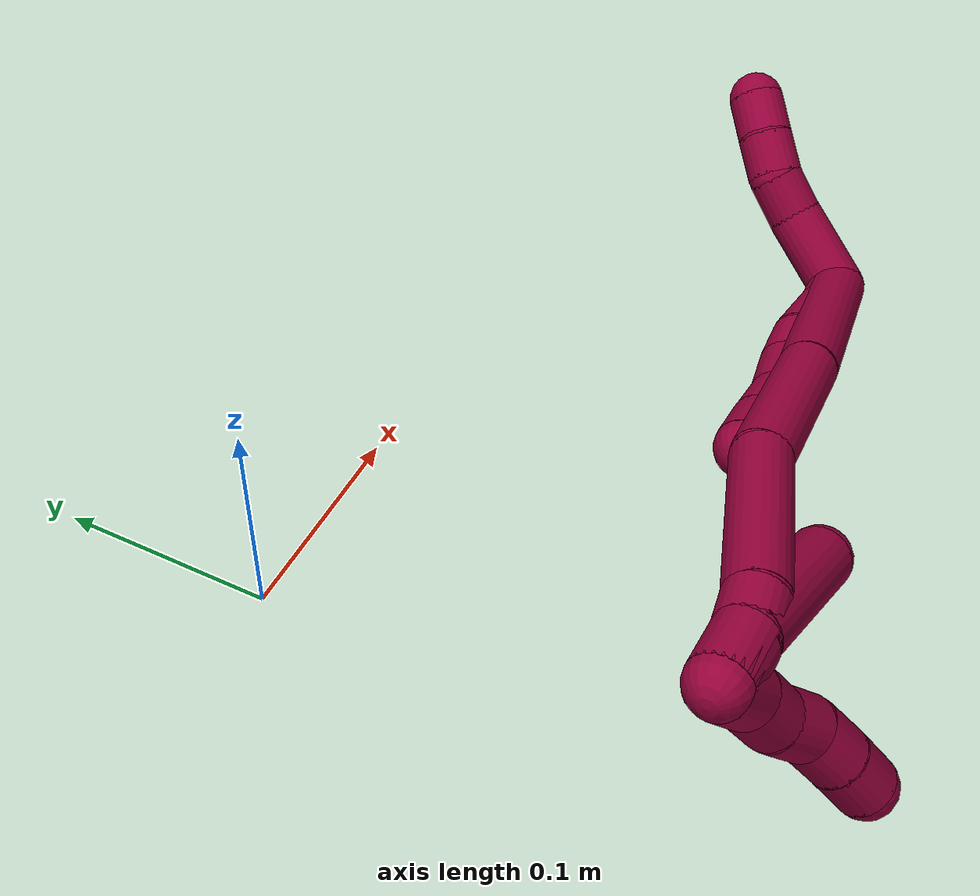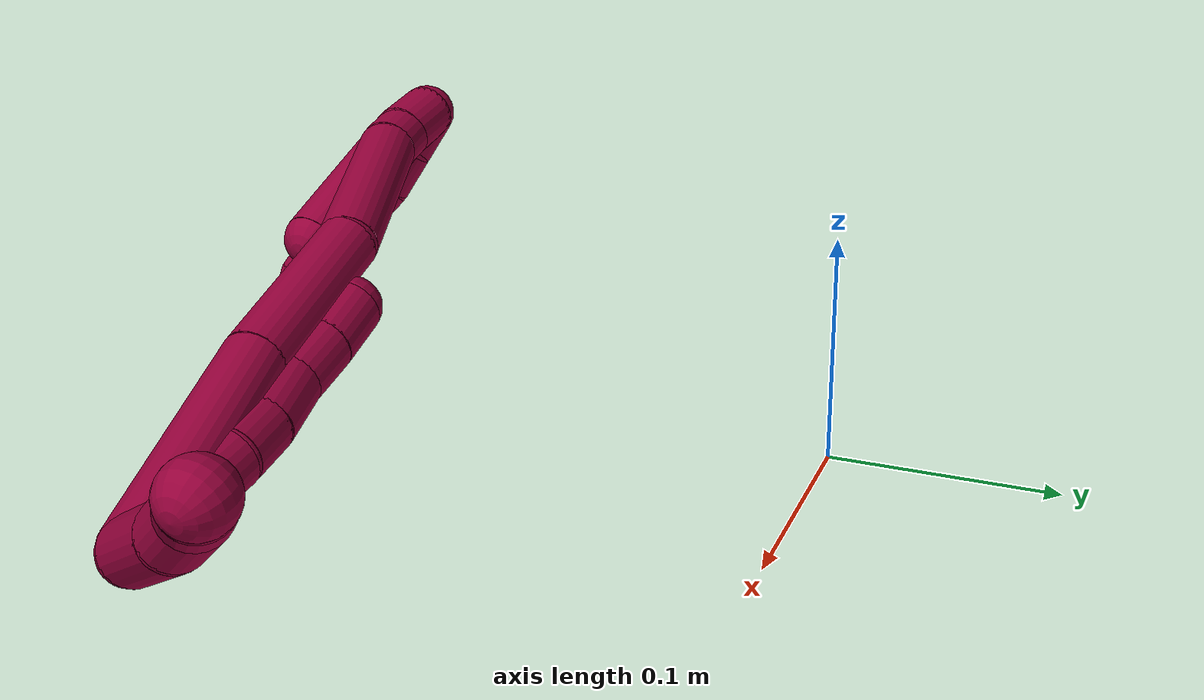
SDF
<sdf version="1.7">
 <world name="default">
  <model name="8">
   <static>0</static>
   <link name="8">
    <collision name="collision-cylinder-e_1_2_8">
     <pose>-0.000372 -0.000363 -0.010866 3.10817 -0.034182 -1.59312</pose>
     <geometry><cylinder><radius>0.0125</radius><length>0.021757</length></cylinder></geometry>
     <surface>
      <friction><ode><mu>1.16</mu><mu2>1.16</mu2><slip1>0</slip1><slip2>0</slip2></ode></friction>
      <contact><ode><kp>1e+06</kp><kd>1</kd><max_vel>0</max_vel><min_depth>0.001</min_depth></ode></contact>
     </surface>
    </collision>
    <visual name="visual-cylinder-e_1_2_8">
     <pose>-0.000372 -0.000363 -0.010866 3.10817 -0.034182 -1.59312</pose>
     <geometry><cylinder><radius>0.0125</radius><length>0.021757</length></cylinder></geometry>
     <material><ambient>0.584314 0 0.227451 1</ambient></material>
    </visual>
    <collision name="collision-cylinder-e_2_8_9">
     <pose>-0.00029 0.000176 -0.037294 -3.08365 0.029113 -0.930977</pose>
     <geometry><cylinder><radius>0.0125</radius><length>0.031189</length></cylinder></geometry>
     <surface>
      <friction><ode><mu>1.16</mu><mu2>1.16</mu2><slip1>0</slip1><slip2>0</slip2></ode></friction>
      <contact><ode><kp>1e+06</kp><kd>1</kd><max_vel>0</max_vel><min_depth>0.001</min_depth></ode></contact>
     </surface>
    </collision>
    <visual name="visual-cylinder-e_2_8_9">
     <pose>-0.00029 0.000176 -0.037294 -3.08365 0.029113 -0.930977</pose>
     <geometry><cylinder><radius>0.0125</radius><length>0.031189</length></cylinder></geometry>
     <material><ambient>0.584314 0 0.227451 1</ambient></material>
    </visual>
    <collision name="collision-cylinder-e_3_9_10">
     <pose>0.000195 -0.000116 -0.06377 3.03254 0.0028 0.051282</pose>
     <geometry><cylinder><radius>0.0125</radius><length>0.021959</length></cylinder></geometry>
     <surface>
      <friction><ode><mu>1.16</mu><mu2>1.16</mu2><slip1>0</slip1><slip2>0</slip2></ode></friction>
      <contact><ode><kp>1e+06</kp><kd>1</kd><max_vel>0</max_vel><min_depth>0.001</min_depth></ode></contact>
     </surface>
    </collision>
    <visual name="visual-cylinder-e_3_9_10">
     <pose>0.000195 -0.000116 -0.06377 3.03254 0.0028 0.051282</pose>
     <geometry><cylinder><radius>0.0125</radius><length>0.021959</length></cylinder></geometry>
     <material><ambient>0.584314 0 0.227451 1</ambient></material>
    </visual>
    <collision name="collision-cylinder-e_4_10_11">
     <pose>-0.001576 -0.002849 -0.088006 3.02665 -0.133594 -1.72103</pose>
     <geometry><cylinder><radius>0.0125</radius><length>0.027061</length></cylinder></geometry>
     <surface>
      <friction><ode><mu>1.16</mu><mu2>1.16</mu2><slip1>0</slip1><slip2>0</slip2></ode></friction>
      <contact><ode><kp>1e+06</kp><kd>1</kd><max_vel>0</max_vel><min_depth>0.001</min_depth></ode></contact>
     </surface>
    </collision>
    <visual name="visual-cylinder-e_4_10_11">
     <pose>-0.001576 -0.002849 -0.088006 3.02665 -0.133594 -1.72103</pose>
     <geometry><cylinder><radius>0.0125</radius><length>0.027061</length></cylinder></geometry>
     <material><ambient>0.584314 0 0.227451 1</ambient></material>
    </visual>
    <collision name="collision-cylinder-e_5_11_12">
     <pose>-0.004167 -0.003858 -0.113077 -3.09659 -0.066915 1.95765</pose>
     <geometry><cylinder><radius>0.0125</radius><length>0.023577</length></cylinder></geometry>
     <surface>
      <friction><ode><mu>1.16</mu><mu2>1.16</mu2><slip1>0</slip1><slip2>0</slip2></ode></friction>
      <contact><ode><kp>1e+06</kp><kd>1</kd><max_vel>0</max_vel><min_depth>0.001</min_depth></ode></contact>
     </surface>
    </collision>
    <visual name="visual-cylinder-e_5_11_12">
     <pose>-0.004167 -0.003858 -0.113077 -3.09659 -0.066915 1.95765</pose>
     <geometry><cylinder><radius>0.0125</radius><length>0.023577</length></cylinder></geometry>
     <material><ambient>0.584314 0 0.227451 1</ambient></material>
    </visual>
    <collision name="collision-cylinder-e_6_12_6">
     <pose>-0.006436 -0.002877 -0.136958 -3.10442 -0.121364 2.54778</pose>
     <geometry><cylinder><radius>0.0125</radius><length>0.024457</length></cylinder></geometry>
     <surface>
      <friction><ode><mu>1.16</mu><mu2>1.16</mu2><slip1>0</slip1><slip2>0</slip2></ode></friction>
      <contact><ode><kp>1e+06</kp><kd>1</kd><max_vel>0</max_vel><min_depth>0.001</min_depth></ode></contact>
     </surface>
    </collision>
    <visual name="visual-cylinder-e_6_12_6">
     <pose>-0.006436 -0.002877 -0.136958 -3.10442 -0.121364 2.54778</pose>
     <geometry><cylinder><radius>0.0125</radius><length>0.024457</length></cylinder></geometry>
     <material><ambient>0.584314 0 0.227451 1</ambient></material>
    </visual>
    <collision name="collision-cylinder-e_1_2_13">
     <pose>-0.000548 0.018665 0.006023 -1.25865 -0.027948 0.020349</pose>
     <geometry><cylinder><radius>0.0125</radius><length>0.039241</length></cylinder></geometry>
     <surface>
      <friction><ode><mu>1.16</mu><mu2>1.16</mu2><slip1>0</slip1><slip2>0</slip2></ode></friction>
      <contact><ode><kp>1e+06</kp><kd>1</kd><max_vel>0</max_vel><min_depth>0.001</min_depth></ode></contact>
     </surface>
    </collision>
    <visual name="visual-cylinder-e_1_2_13">
     <pose>-0.000548 0.018665 0.006023 -1.25865 -0.027948 0.020349</pose>
     <geometry><cylinder><radius>0.0125</radius><length>0.039241</length></cylinder></geometry>
     <material><ambient>0.584314 0 0.227451 1</ambient></material>
    </visual>
    <collision name="collision-cylinder-e_2_13_14">
     <pose>-0.003019 0.047315 0.013868 -1.39029 -0.187169 0.156242</pose>
     <geometry><cylinder><radius>0.0125</radius><length>0.020661</length></cylinder></geometry>
     <surface>
      <friction><ode><mu>1.16</mu><mu2>1.16</mu2><slip1>0</slip1><slip2>0</slip2></ode></friction>
      <contact><ode><kp>1e+06</kp><kd>1</kd><max_vel>0</max_vel><min_depth>0.001</min_depth></ode></contact>
     </surface>
    </collision>
    <visual name="visual-cylinder-e_2_13_14">
     <pose>-0.003019 0.047315 0.013868 -1.39029 -0.187169 0.156242</pose>
     <geometry><cylinder><radius>0.0125</radius><length>0.020661</length></cylinder></geometry>
     <material><ambient>0.584314 0 0.227451 1</ambient></material>
    </visual>
    <collision name="collision-cylinder-e_3_14_15">
     <pose>-0.007179 0.065779 0.020568 -1.04885 -0.224929 0.130476</pose>
     <geometry><cylinder><radius>0.0125</radius><length>0.02007</length></cylinder></geometry>
     <surface>
      <friction><ode><mu>1.16</mu><mu2>1.16</mu2><slip1>0</slip1><slip2>0</slip2></ode></friction>
      <contact><ode><kp>1e+06</kp><kd>1</kd><max_vel>0</max_vel><min_depth>0.001</min_depth></ode></contact>
     </surface>
    </collision>
    <visual name="visual-cylinder-e_3_14_15">
     <pose>-0.007179 0.065779 0.020568 -1.04885 -0.224929 0.130476</pose>
     <geometry><cylinder><radius>0.0125</radius><length>0.02007</length></cylinder></geometry>
     <material><ambient>0.584314 0 0.227451 1</ambient></material>
    </visual>
    <collision name="collision-cylinder-e_4_15_5">
     <pose>-0.011172 0.082302 0.031148 -0.954008 -0.176141 0.091204</pose>
     <geometry><cylinder><radius>0.0125</radius><length>0.020029</length></cylinder></geometry>
     <surface>
      <friction><ode><mu>1.16</mu><mu2>1.16</mu2><slip1>0</slip1><slip2>0</slip2></ode></friction>
      <contact><ode><kp>1e+06</kp><kd>1</kd><max_vel>0</max_vel><min_depth>0.001</min_depth></ode></contact>
     </surface>
    </collision>
    <visual name="visual-cylinder-e_4_15_5">
     <pose>-0.011172 0.082302 0.031148 -0.954008 -0.176141 0.091204</pose>
     <geometry><cylinder><radius>0.0125</radius><length>0.020029</length></cylinder></geometry>
     <material><ambient>0.584314 0 0.227451 1</ambient></material>
    </visual>
    <collision name="collision-cylinder-e_1_2_16">
     <pose>-0.009371 -0.001298 -0.046713 3.11382 -0.197915 -2.86361</pose>
     <geometry><cylinder><radius>0.0125</radius><length>0.095322</length></cylinder></geometry>
     <surface>
      <friction><ode><mu>1.16</mu><mu2>1.16</mu2><slip1>0</slip1><slip2>0</slip2></ode></friction>
      <contact><ode><kp>1e+06</kp><kd>1</kd><max_vel>0</max_vel><min_depth>0.001</min_depth></ode></contact>
     </surface>
    </collision>
    <visual name="visual-cylinder-e_1_2_16">
     <pose>-0.009371 -0.001298 -0.046713 3.11382 -0.197915 -2.86361</pose>
     <geometry><cylinder><radius>0.0125</radius><length>0.095322</length></cylinder></geometry>
     <material><ambient>0.584314 0 0.227451 1</ambient></material>
    </visual>
    <collision name="collision-cylinder-e_2_16_17">
     <pose>-0.0231 -0.002822 -0.132274 3.13577 -0.111687 -3.03756</pose>
     <geometry><cylinder><radius>0.0125</radius><length>0.078186</length></cylinder></geometry>
     <surface>
      <friction><ode><mu>1.16</mu><mu2>1.16</mu2><slip1>0</slip1><slip2>0</slip2></ode></friction>
      <contact><ode><kp>1e+06</kp><kd>1</kd><max_vel>0</max_vel><min_depth>0.001</min_depth></ode></contact>
     </surface>
    </collision>
    <visual name="visual-cylinder-e_2_16_17">
     <pose>-0.0231 -0.002822 -0.132274 3.13577 -0.111687 -3.03756</pose>
     <geometry><cylinder><radius>0.0125</radius><length>0.078186</length></cylinder></geometry>
     <material><ambient>0.584314 0 0.227451 1</ambient></material>
    </visual>
    <collision name="collision-cylinder-e_3_17_18">
     <pose>-0.036371 -0.012299 -0.210545 2.9111 -0.216684 -1.50856</pose>
     <geometry><cylinder><radius>0.0125</radius><length>0.082924</length></cylinder></geometry>
     <surface>
      <friction><ode><mu>1.16</mu><mu2>1.16</mu2><slip1>0</slip1><slip2>0</slip2></ode></friction>
      <contact><ode><kp>1e+06</kp><kd>1</kd><max_vel>0</max_vel><min_depth>0.001</min_depth></ode></contact>
     </surface>
    </collision>
    <visual name="visual-cylinder-e_3_17_18">
     <pose>-0.036371 -0.012299 -0.210545 2.9111 -0.216684 -1.50856</pose>
     <geometry><cylinder><radius>0.0125</radius><length>0.082924</length></cylinder></geometry>
     <material><ambient>0.584314 0 0.227451 1</ambient></material>
    </visual>
    <collision name="collision-cylinder-e_4_18_19">
     <pose>-0.04573 -0.023326 -0.260496 2.97446 -0.041599 -0.486867</pose>
     <geometry><cylinder><radius>0.0125</radius><length>0.021375</length></cylinder></geometry>
     <surface>
      <friction><ode><mu>1.16</mu><mu2>1.16</mu2><slip1>0</slip1><slip2>0</slip2></ode></friction>
      <contact><ode><kp>1e+06</kp><kd>1</kd><max_vel>0</max_vel><min_depth>0.001</min_depth></ode></contact>
     </surface>
    </collision>
    <visual name="visual-cylinder-e_4_18_19">
     <pose>-0.04573 -0.023326 -0.260496 2.97446 -0.041599 -0.486867</pose>
     <geometry><cylinder><radius>0.0125</radius><length>0.021375</length></cylinder></geometry>
     <material><ambient>0.584314 0 0.227451 1</ambient></material>
    </visual>
    <collision name="collision-cylinder-e_5_19_1">
     <pose>-0.046177 -0.024911 -0.28212 -3.12437 -0.000275 0.031885</pose>
     <geometry><cylinder><radius>0.0125</radius><length>0.022192</length></cylinder></geometry>
     <surface>
      <friction><ode><mu>1.16</mu><mu2>1.16</mu2><slip1>0</slip1><slip2>0</slip2></ode></friction>
      <contact><ode><kp>1e+06</kp><kd>1</kd><max_vel>0</max_vel><min_depth>0.001</min_depth></ode></contact>
     </surface>
    </collision>
    <visual name="visual-cylinder-e_5_19_1">
     <pose>-0.046177 -0.024911 -0.28212 -3.12437 -0.000275 0.031885</pose>
     <geometry><cylinder><radius>0.0125</radius><length>0.022192</length></cylinder></geometry>
     <material><ambient>0.584314 0 0.227451 1</ambient></material>
    </visual>
    <collision name="collision-cylinder-e_1_1_20">
     <pose>-0.046266 -0.024585 -0.280516 -0.010602 -0.006788 3.6e-05</pose>
     <geometry><cylinder><radius>0.0125</radius><length>0.025398</length></cylinder></geometry>
     <surface>
      <friction><ode><mu>1.16</mu><mu2>1.16</mu2><slip1>0</slip1><slip2>0</slip2></ode></friction>
      <contact><ode><kp>1e+06</kp><kd>1</kd><max_vel>0</max_vel><min_depth>0.001</min_depth></ode></contact>
     </surface>
    </collision>
    <visual name="visual-cylinder-e_1_1_20">
     <pose>-0.046266 -0.024585 -0.280516 -0.010602 -0.006788 3.6e-05</pose>
     <geometry><cylinder><radius>0.0125</radius><length>0.025398</length></cylinder></geometry>
     <material><ambient>0.584314 0 0.227451 1</ambient></material>
    </visual>
    <collision name="collision-cylinder-e_2_20_4">
     <pose>-0.040457 -0.032311 -0.231835 0.21507 0.158728 0.017171</pose>
     <geometry><cylinder><radius>0.0125</radius><length>0.074602</length></cylinder></geometry>
     <surface>
      <friction><ode><mu>1.16</mu><mu2>1.16</mu2><slip1>0</slip1><slip2>0</slip2></ode></friction>
      <contact><ode><kp>1e+06</kp><kd>1</kd><max_vel>0</max_vel><min_depth>0.001</min_depth></ode></contact>
     </surface>
    </collision>
    <visual name="visual-cylinder-e_2_20_4">
     <pose>-0.040457 -0.032311 -0.231835 0.21507 0.158728 0.017171</pose>
     <geometry><cylinder><radius>0.0125</radius><length>0.074602</length></cylinder></geometry>
     <material><ambient>0.584314 0 0.227451 1</ambient></material>
    </visual>
    <collision name="collision-cylinder-e_1_1_21">
     <pose>-0.042659 -0.031206 -0.286466 0.765593 0.359795 0.146197</pose>
     <geometry><cylinder><radius>0.0125</radius><length>0.02</length></cylinder></geometry>
     <surface>
      <friction><ode><mu>1.16</mu><mu2>1.16</mu2><slip1>0</slip1><slip2>0</slip2></ode></friction>
      <contact><ode><kp>1e+06</kp><kd>1</kd><max_vel>0</max_vel><min_depth>0.001</min_depth></ode></contact>
     </surface>
    </collision>
    <visual name="visual-cylinder-e_1_1_21">
     <pose>-0.042659 -0.031206 -0.286466 0.765593 0.359795 0.146197</pose>
     <geometry><cylinder><radius>0.0125</radius><length>0.02</length></cylinder></geometry>
     <material><ambient>0.584314 0 0.227451 1</ambient></material>
    </visual>
    <collision name="collision-cylinder-e_2_21_22">
     <pose>-0.035488 -0.045634 -0.274862 1.022 0.373699 0.211208</pose>
     <geometry><cylinder><radius>0.0125</radius><length>0.02</length></cylinder></geometry>
     <surface>
      <friction><ode><mu>1.16</mu><mu2>1.16</mu2><slip1>0</slip1><slip2>0</slip2></ode></friction>
      <contact><ode><kp>1e+06</kp><kd>1</kd><max_vel>0</max_vel><min_depth>0.001</min_depth></ode></contact>
     </surface>
    </collision>
    <visual name="visual-cylinder-e_2_21_22">
     <pose>-0.035488 -0.045634 -0.274862 1.022 0.373699 0.211208</pose>
     <geometry><cylinder><radius>0.0125</radius><length>0.02</length></cylinder></geometry>
     <material><ambient>0.584314 0 0.227451 1</ambient></material>
    </visual>
    <collision name="collision-cylinder-e_3_22_23">
     <pose>-0.030101 -0.061089 -0.263637 0.867613 0.174463 0.080979</pose>
     <geometry><cylinder><radius>0.0125</radius><length>0.02</length></cylinder></geometry>
     <surface>
      <friction><ode><mu>1.16</mu><mu2>1.16</mu2><slip1>0</slip1><slip2>0</slip2></ode></friction>
      <contact><ode><kp>1e+06</kp><kd>1</kd><max_vel>0</max_vel><min_depth>0.001</min_depth></ode></contact>
     </surface>
    </collision>
    <visual name="visual-cylinder-e_3_22_23">
     <pose>-0.030101 -0.061089 -0.263637 0.867613 0.174463 0.080979</pose>
     <geometry><cylinder><radius>0.0125</radius><length>0.02</length></cylinder></geometry>
     <material><ambient>0.584314 0 0.227451 1</ambient></material>
    </visual>
    <collision name="collision-cylinder-e_4_23_24">
     <pose>-0.026207 -0.077727 -0.253795 1.20706 0.217573 0.150291</pose>
     <geometry><cylinder><radius>0.0125</radius><length>0.02</length></cylinder></geometry>
     <surface>
      <friction><ode><mu>1.16</mu><mu2>1.16</mu2><slip1>0</slip1><slip2>0</slip2></ode></friction>
      <contact><ode><kp>1e+06</kp><kd>1</kd><max_vel>0</max_vel><min_depth>0.001</min_depth></ode></contact>
     </surface>
    </collision>
    <visual name="visual-cylinder-e_4_23_24">
     <pose>-0.026207 -0.077727 -0.253795 1.20706 0.217573 0.150291</pose>
     <geometry><cylinder><radius>0.0125</radius><length>0.02</length></cylinder></geometry>
     <material><ambient>0.584314 0 0.227451 1</ambient></material>
    </visual>
    <collision name="collision-cylinder-e_5_24_3">
     <pose>-0.021231 -0.095773 -0.246787 1.19359 0.285604 0.194763</pose>
     <geometry><cylinder><radius>0.0125</radius><length>0.02</length></cylinder></geometry>
     <surface>
      <friction><ode><mu>1.16</mu><mu2>1.16</mu2><slip1>0</slip1><slip2>0</slip2></ode></friction>
      <contact><ode><kp>1e+06</kp><kd>1</kd><max_vel>0</max_vel><min_depth>0.001</min_depth></ode></contact>
     </surface>
    </collision>
    <visual name="visual-cylinder-e_5_24_3">
     <pose>-0.021231 -0.095773 -0.246787 1.19359 0.285604 0.194763</pose>
     <geometry><cylinder><radius>0.0125</radius><length>0.02</length></cylinder></geometry>
     <material><ambient>0.584314 0 0.227451 1</ambient></material>
    </visual>
    <collision name="collision-sphere-3">
     <pose>-0.018414 -0.104693 -0.243253 0 -0 0</pose>
     <geometry><sphere><radius>0.0125</radius></sphere></geometry>
     <surface>
      <friction><ode><mu>1.16</mu><mu2>1.16</mu2><slip1>0</slip1><slip2>0</slip2></ode></friction>
      <contact><ode><kp>1e+06</kp><kd>1</kd><max_vel>0</max_vel><min_depth>0.001</min_depth></ode></contact>
     </surface>
    </collision>
    <visual name="visual-sphere-3">
     <pose>-0.018414 -0.104693 -0.243253 0 -0 0</pose>
     <geometry><sphere><radius>0.0125</radius></sphere></geometry>
     <material><ambient>0.584314 0 0.227451 1</ambient></material>
    </visual>
    <collision name="collision-sphere-24">
     <pose>-0.024048 -0.086852 -0.250321 0 -0 0</pose>
     <geometry><sphere><radius>0.0125</radius></sphere></geometry>
     <surface>
      <friction><ode><mu>1.16</mu><mu2>1.16</mu2><slip1>0</slip1><slip2>0</slip2></ode></friction>
      <contact><ode><kp>1e+06</kp><kd>1</kd><max_vel>0</max_vel><min_depth>0.001</min_depth></ode></contact>
     </surface>
    </collision>
    <visual name="visual-sphere-24">
     <pose>-0.024048 -0.086852 -0.250321 0 -0 0</pose>
     <geometry><sphere><radius>0.0125</radius></sphere></geometry>
     <material><ambient>0.584314 0 0.227451 1</ambient></material>
    </visual>
    <collision name="collision-sphere-23">
     <pose>-0.028366 -0.068601 -0.257269 0 -0 0</pose>
     <geometry><sphere><radius>0.0125</radius></sphere></geometry>
     <surface>
      <friction><ode><mu>1.16</mu><mu2>1.16</mu2><slip1>0</slip1><slip2>0</slip2></ode></friction>
      <contact><ode><kp>1e+06</kp><kd>1</kd><max_vel>0</max_vel><min_depth>0.001</min_depth></ode></contact>
     </surface>
    </collision>
    <visual name="visual-sphere-23">
     <pose>-0.028366 -0.068601 -0.257269 0 -0 0</pose>
     <geometry><sphere><radius>0.0125</radius></sphere></geometry>
     <material><ambient>0.584314 0 0.227451 1</ambient></material>
    </visual>
    <collision name="collision-sphere-22">
     <pose>-0.031837 -0.053577 -0.270005 0 -0 0</pose>
     <geometry><sphere><radius>0.0125</radius></sphere></geometry>
     <surface>
      <friction><ode><mu>1.16</mu><mu2>1.16</mu2><slip1>0</slip1><slip2>0</slip2></ode></friction>
      <contact><ode><kp>1e+06</kp><kd>1</kd><max_vel>0</max_vel><min_depth>0.001</min_depth></ode></contact>
     </surface>
    </collision>
    <visual name="visual-sphere-22">
     <pose>-0.031837 -0.053577 -0.270005 0 -0 0</pose>
     <geometry><sphere><radius>0.0125</radius></sphere></geometry>
     <material><ambient>0.584314 0 0.227451 1</ambient></material>
    </visual>
    <collision name="collision-sphere-21">
     <pose>-0.039138 -0.037692 -0.279718 0 -0 0</pose>
     <geometry><sphere><radius>0.0125</radius></sphere></geometry>
     <surface>
      <friction><ode><mu>1.16</mu><mu2>1.16</mu2><slip1>0</slip1><slip2>0</slip2></ode></friction>
      <contact><ode><kp>1e+06</kp><kd>1</kd><max_vel>0</max_vel><min_depth>0.001</min_depth></ode></contact>
     </surface>
    </collision>
    <visual name="visual-sphere-21">
     <pose>-0.039138 -0.037692 -0.279718 0 -0 0</pose>
     <geometry><sphere><radius>0.0125</radius></sphere></geometry>
     <material><ambient>0.584314 0 0.227451 1</ambient></material>
    </visual>
    <collision name="collision-sphere-4">
     <pose>-0.034561 -0.040172 -0.195851 0 -0 0</pose>
     <geometry><sphere><radius>0.0125</radius></sphere></geometry>
     <surface>
      <friction><ode><mu>1.16</mu><mu2>1.16</mu2><slip1>0</slip1><slip2>0</slip2></ode></friction>
      <contact><ode><kp>1e+06</kp><kd>1</kd><max_vel>0</max_vel><min_depth>0.001</min_depth></ode></contact>
     </surface>
    </collision>
    <visual name="visual-sphere-4">
     <pose>-0.034561 -0.040172 -0.195851 0 -0 0</pose>
     <geometry><sphere><radius>0.0125</radius></sphere></geometry>
     <material><ambient>0.584314 0 0.227451 1</ambient></material>
    </visual>
    <collision name="collision-sphere-20">
     <pose>-0.046353 -0.024451 -0.267818 0 -0 0</pose>
     <geometry><sphere><radius>0.0125</radius></sphere></geometry>
     <surface>
      <friction><ode><mu>1.16</mu><mu2>1.16</mu2><slip1>0</slip1><slip2>0</slip2></ode></friction>
      <contact><ode><kp>1e+06</kp><kd>1</kd><max_vel>0</max_vel><min_depth>0.001</min_depth></ode></contact>
     </surface>
    </collision>
    <visual name="visual-sphere-20">
     <pose>-0.046353 -0.024451 -0.267818 0 -0 0</pose>
     <geometry><sphere><radius>0.0125</radius></sphere></geometry>
     <material><ambient>0.584314 0 0.227451 1</ambient></material>
    </visual>
    <collision name="collision-sphere-12">
     <pose>-0.004955 -0.003328 -0.124828 0 -0 0</pose>
     <geometry><sphere><radius>0.0125</radius></sphere></geometry>
     <surface>
      <friction><ode><mu>1.16</mu><mu2>1.16</mu2><slip1>0</slip1><slip2>0</slip2></ode></friction>
      <contact><ode><kp>1e+06</kp><kd>1</kd><max_vel>0</max_vel><min_depth>0.001</min_depth></ode></contact>
     </surface>
    </collision>
    <visual name="visual-sphere-12">
     <pose>-0.004955 -0.003328 -0.124828 0 -0 0</pose>
     <geometry><sphere><radius>0.0125</radius></sphere></geometry>
     <material><ambient>0.584314 0 0.227451 1</ambient></material>
    </visual>
    <collision name="collision-sphere-11">
     <pose>-0.003379 -0.004387 -0.101327 0 -0 0</pose>
     <geometry><sphere><radius>0.0125</radius></sphere></geometry>
     <surface>
      <friction><ode><mu>1.16</mu><mu2>1.16</mu2><slip1>0</slip1><slip2>0</slip2></ode></friction>
      <contact><ode><kp>1e+06</kp><kd>1</kd><max_vel>0</max_vel><min_depth>0.001</min_depth></ode></contact>
     </surface>
    </collision>
    <visual name="visual-sphere-11">
     <pose>-0.003379 -0.004387 -0.101327 0 -0 0</pose>
     <geometry><sphere><radius>0.0125</radius></sphere></geometry>
     <material><ambient>0.584314 0 0.227451 1</ambient></material>
    </visual>
    <collision name="collision-sphere-10">
     <pose>0.000226 -0.001311 -0.074684 0 -0 0</pose>
     <geometry><sphere><radius>0.0125</radius></sphere></geometry>
     <surface>
      <friction><ode><mu>1.16</mu><mu2>1.16</mu2><slip1>0</slip1><slip2>0</slip2></ode></friction>
      <contact><ode><kp>1e+06</kp><kd>1</kd><max_vel>0</max_vel><min_depth>0.001</min_depth></ode></contact>
     </surface>
    </collision>
    <visual name="visual-sphere-10">
     <pose>0.000226 -0.001311 -0.074684 0 -0 0</pose>
     <geometry><sphere><radius>0.0125</radius></sphere></geometry>
     <material><ambient>0.584314 0 0.227451 1</ambient></material>
    </visual>
    <collision name="collision-sphere-9">
     <pose>0.000164 0.001079 -0.052856 0 -0 0</pose>
     <geometry><sphere><radius>0.0125</radius></sphere></geometry>
     <surface>
      <friction><ode><mu>1.16</mu><mu2>1.16</mu2><slip1>0</slip1><slip2>0</slip2></ode></friction>
      <contact><ode><kp>1e+06</kp><kd>1</kd><max_vel>0</max_vel><min_depth>0.001</min_depth></ode></contact>
     </surface>
    </collision>
    <visual name="visual-sphere-9">
     <pose>0.000164 0.001079 -0.052856 0 -0 0</pose>
     <geometry><sphere><radius>0.0125</radius></sphere></geometry>
     <material><ambient>0.584314 0 0.227451 1</ambient></material>
    </visual>
    <collision name="collision-sphere-2">
     <geometry><sphere><radius>0.0125</radius></sphere></geometry>
     <surface>
      <friction><ode><mu>1.16</mu><mu2>1.16</mu2><slip1>0</slip1><slip2>0</slip2></ode></friction>
      <contact><ode><kp>1e+06</kp><kd>1</kd><max_vel>0</max_vel><min_depth>0.001</min_depth></ode></contact>
     </surface>
    </collision>
    <visual name="visual-sphere-2">
     <geometry><sphere><radius>0.0125</radius></sphere></geometry>
     <material><ambient>0.584314 0 0.227451 1</ambient></material>
    </visual>
    <collision name="collision-sphere-19">
     <pose>-0.046174 -0.025102 -0.271026 0 -0 0</pose>
     <geometry><sphere><radius>0.0125</radius></sphere></geometry>
     <surface>
      <friction><ode><mu>1.16</mu><mu2>1.16</mu2><slip1>0</slip1><slip2>0</slip2></ode></friction>
      <contact><ode><kp>1e+06</kp><kd>1</kd><max_vel>0</max_vel><min_depth>0.001</min_depth></ode></contact>
     </surface>
    </collision>
    <visual name="visual-sphere-19">
     <pose>-0.046174 -0.025102 -0.271026 0 -0 0</pose>
     <geometry><sphere><radius>0.0125</radius></sphere></geometry>
     <material><ambient>0.584314 0 0.227451 1</ambient></material>
    </visual>
    <collision name="collision-sphere-8">
     <pose>-0.000744 -0.000727 -0.021733 0 -0 0</pose>
     <geometry><sphere><radius>0.0125</radius></sphere></geometry>
     <surface>
      <friction><ode><mu>1.16</mu><mu2>1.16</mu2><slip1>0</slip1><slip2>0</slip2></ode></friction>
      <contact><ode><kp>1e+06</kp><kd>1</kd><max_vel>0</max_vel><min_depth>0.001</min_depth></ode></contact>
     </surface>
    </collision>
    <visual name="visual-sphere-8">
     <pose>-0.000744 -0.000727 -0.021733 0 -0 0</pose>
     <geometry><sphere><radius>0.0125</radius></sphere></geometry>
     <material><ambient>0.584314 0 0.227451 1</ambient></material>
    </visual>
    <collision name="collision-sphere-6">
     <pose>-0.007916 -0.002426 -0.149088 0 -0 0</pose>
     <geometry><sphere><radius>0.0125</radius></sphere></geometry>
     <surface>
      <friction><ode><mu>1.16</mu><mu2>1.16</mu2><slip1>0</slip1><slip2>0</slip2></ode></friction>
      <contact><ode><kp>1e+06</kp><kd>1</kd><max_vel>0</max_vel><min_depth>0.001</min_depth></ode></contact>
     </surface>
    </collision>
    <visual name="visual-sphere-6">
     <pose>-0.007916 -0.002426 -0.149088 0 -0 0</pose>
     <geometry><sphere><radius>0.0125</radius></sphere></geometry>
     <material><ambient>0.584314 0 0.227451 1</ambient></material>
    </visual>
    <collision name="collision-sphere-13">
     <pose>-0.001097 0.03733 0.012046 0 -0 0</pose>
     <geometry><sphere><radius>0.0125</radius></sphere></geometry>
     <surface>
      <friction><ode><mu>1.16</mu><mu2>1.16</mu2><slip1>0</slip1><slip2>0</slip2></ode></friction>
      <contact><ode><kp>1e+06</kp><kd>1</kd><max_vel>0</max_vel><min_depth>0.001</min_depth></ode></contact>
     </surface>
    </collision>
    <visual name="visual-sphere-13">
     <pose>-0.001097 0.03733 0.012046 0 -0 0</pose>
     <geometry><sphere><radius>0.0125</radius></sphere></geometry>
     <material><ambient>0.584314 0 0.227451 1</ambient></material>
    </visual>
    <collision name="collision-sphere-14">
     <pose>-0.004941 0.0573 0.015691 0 -0 0</pose>
     <geometry><sphere><radius>0.0125</radius></sphere></geometry>
     <surface>
      <friction><ode><mu>1.16</mu><mu2>1.16</mu2><slip1>0</slip1><slip2>0</slip2></ode></friction>
      <contact><ode><kp>1e+06</kp><kd>1</kd><max_vel>0</max_vel><min_depth>0.001</min_depth></ode></contact>
     </surface>
    </collision>
    <visual name="visual-sphere-14">
     <pose>-0.004941 0.0573 0.015691 0 -0 0</pose>
     <geometry><sphere><radius>0.0125</radius></sphere></geometry>
     <material><ambient>0.584314 0 0.227451 1</ambient></material>
    </visual>
    <collision name="collision-sphere-15">
     <pose>-0.009417 0.074259 0.025445 0 -0 0</pose>
     <geometry><sphere><radius>0.0125</radius></sphere></geometry>
     <surface>
      <friction><ode><mu>1.16</mu><mu2>1.16</mu2><slip1>0</slip1><slip2>0</slip2></ode></friction>
      <contact><ode><kp>1e+06</kp><kd>1</kd><max_vel>0</max_vel><min_depth>0.001</min_depth></ode></contact>
     </surface>
    </collision>
    <visual name="visual-sphere-15">
     <pose>-0.009417 0.074259 0.025445 0 -0 0</pose>
     <geometry><sphere><radius>0.0125</radius></sphere></geometry>
     <material><ambient>0.584314 0 0.227451 1</ambient></material>
    </visual>
    <collision name="collision-sphere-5">
     <pose>-0.012927 0.090345 0.036851 0 -0 0</pose>
     <geometry><sphere><radius>0.0125</radius></sphere></geometry>
     <surface>
      <friction><ode><mu>1.16</mu><mu2>1.16</mu2><slip1>0</slip1><slip2>0</slip2></ode></friction>
      <contact><ode><kp>1e+06</kp><kd>1</kd><max_vel>0</max_vel><min_depth>0.001</min_depth></ode></contact>
     </surface>
    </collision>
    <visual name="visual-sphere-5">
     <pose>-0.012927 0.090345 0.036851 0 -0 0</pose>
     <geometry><sphere><radius>0.0125</radius></sphere></geometry>
     <material><ambient>0.584314 0 0.227451 1</ambient></material>
    </visual>
    <collision name="collision-sphere-16">
     <pose>-0.018743 -0.002596 -0.093425 0 -0 0</pose>
     <geometry><sphere><radius>0.0125</radius></sphere></geometry>
     <surface>
      <friction><ode><mu>1.16</mu><mu2>1.16</mu2><slip1>0</slip1><slip2>0</slip2></ode></friction>
      <contact><ode><kp>1e+06</kp><kd>1</kd><max_vel>0</max_vel><min_depth>0.001</min_depth></ode></contact>
     </surface>
    </collision>
    <visual name="visual-sphere-16">
     <pose>-0.018743 -0.002596 -0.093425 0 -0 0</pose>
     <geometry><sphere><radius>0.0125</radius></sphere></geometry>
     <material><ambient>0.584314 0 0.227451 1</ambient></material>
    </visual>
    <collision name="collision-sphere-17">
     <pose>-0.027457 -0.003048 -0.171123 0 -0 0</pose>
     <geometry><sphere><radius>0.0125</radius></sphere></geometry>
     <surface>
      <friction><ode><mu>1.16</mu><mu2>1.16</mu2><slip1>0</slip1><slip2>0</slip2></ode></friction>
      <contact><ode><kp>1e+06</kp><kd>1</kd><max_vel>0</max_vel><min_depth>0.001</min_depth></ode></contact>
     </surface>
    </collision>
    <visual name="visual-sphere-17">
     <pose>-0.027457 -0.003048 -0.171123 0 -0 0</pose>
     <geometry><sphere><radius>0.0125</radius></sphere></geometry>
     <material><ambient>0.584314 0 0.227451 1</ambient></material>
    </visual>
    <collision name="collision-sphere-18">
     <pose>-0.045285 -0.021549 -0.249967 0 -0 0</pose>
     <geometry><sphere><radius>0.0125</radius></sphere></geometry>
     <surface>
      <friction><ode><mu>1.16</mu><mu2>1.16</mu2><slip1>0</slip1><slip2>0</slip2></ode></friction>
      <contact><ode><kp>1e+06</kp><kd>1</kd><max_vel>0</max_vel><min_depth>0.001</min_depth></ode></contact>
     </surface>
    </collision>
    <visual name="visual-sphere-18">
     <pose>-0.045285 -0.021549 -0.249967 0 -0 0</pose>
     <geometry><sphere><radius>0.0125</radius></sphere></geometry>
     <material><ambient>0.584314 0 0.227451 1</ambient></material>
    </visual>
    <collision name="collision-sphere-1">
     <pose>-0.04618 -0.02472 -0.293215 0 -0 0</pose>
     <geometry><sphere><radius>0.0125</radius></sphere></geometry>
     <surface>
      <friction><ode><mu>1.16</mu><mu2>1.16</mu2><slip1>0</slip1><slip2>0</slip2></ode></friction>
      <contact><ode><kp>1e+06</kp><kd>1</kd><max_vel>0</max_vel><min_depth>0.001</min_depth></ode></contact>
     </surface>
    </collision>
    <visual name="visual-sphere-1">
     <pose>-0.04618 -0.02472 -0.293215 0 -0 0</pose>
     <geometry><sphere><radius>0.0125</radius></sphere></geometry>
     <material><ambient>0.584314 0 0.227451 1</ambient></material>
    </visual>
    <inertial>
     <pose>-0.02105 -0.009659 -0.139535 0 -0 0</pose>
     <mass>0.75</mass>
     <inertia>
      <ixx>-0.000129</ixx>
      <ixy>0</ixy>
      <ixz>0</ixz>
      <iyy>7.9e-05</iyy>
      <iyz>0</iyz>
      <izz>2.2e-05</izz>
     </inertia>
    </inertial>
   </link>
   <pose>0.246524 -0.168707 0.054374 1.85291 0.932079 1.77894</pose>
  </model>
 </world>
</sdf>
